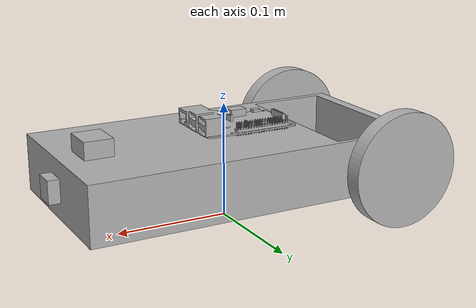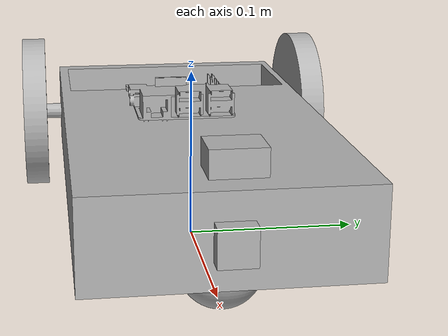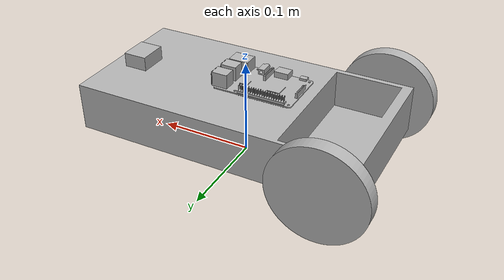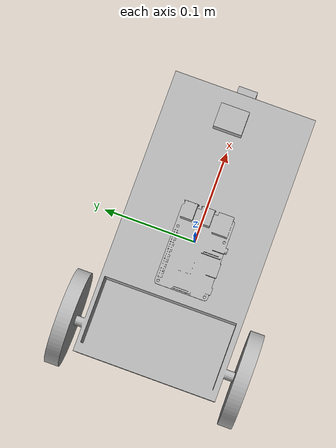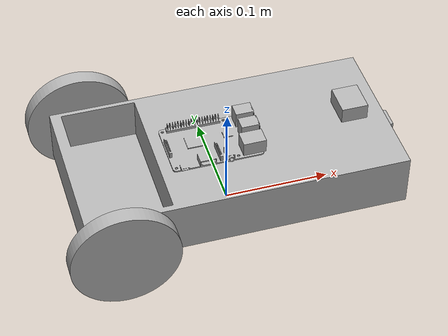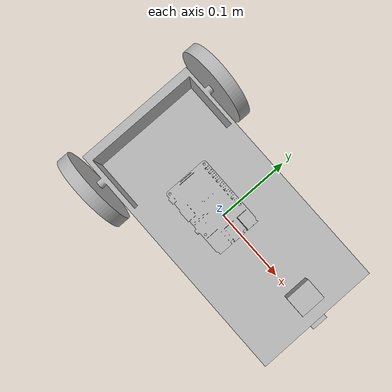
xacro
<?xml version="1.0" ?>
<robot name="beta" xmlns:xacro="http://www.ros.org/wiki/xacro">

<xacro:include filename="$(find beta_description)/urdf/materials.xacro" />
<xacro:include filename="$(find beta_description)/urdf/beta.trans" />
<xacro:include filename="$(find beta_description)/urdf/beta.gazebo" />
<link name="base_link">
  <inertial>
    <origin rpy="0 0 0" xyz="0.021963834758877466 -0.00016670469182376223 0.04894599334218868"/>
    <mass value="1.9711450441063976"/>
    <inertia ixx="0.004232" ixy="-4.2e-05" ixz="-0.000263" iyy="0.012667" iyz="2e-06" izz="0.016042"/>
  </inertial>
  <visual>
    <origin rpy="0 0 0" xyz="0 0 0"/>
    <geometry>
      <mesh filename="package://beta_description/meshes/base_link.stl" scale="0.001 0.001 0.001"/>
    </geometry>
    <material name="silver"/>
  </visual>
  <collision>
    <origin rpy="0 0 0" xyz="0 0 0"/>
    <geometry>
      <mesh filename="package://beta_description/meshes/base_link.stl" scale="0.001 0.001 0.001"/>
    </geometry>
  </collision>
</link>

<link name="left_wheel_1">
  <inertial>
    <origin rpy="0 0 0" xyz="1.3877787807814457e-17 0.007499999999999993 6.938893903907228e-18"/>
    <mass value="0.10956304379394399"/>
    <inertia ixx="7.1e-05" ixy="0.0" ixz="0.0" iyy="0.000137" iyz="0.0" izz="7.1e-05"/>
  </inertial>
  <visual>
    <origin rpy="0 0 0" xyz="0.12 -0.085 -0.05"/>
    <geometry>
      <mesh filename="package://beta_description/meshes/left_wheel_1.stl" scale="0.001 0.001 0.001"/>
    </geometry>
    <material name="silver"/>
  </visual>
  <collision>
    <origin rpy="0 0 0" xyz="0.12 -0.085 -0.05"/>
    <geometry>
      <mesh filename="package://beta_description/meshes/left_wheel_1.stl" scale="0.001 0.001 0.001"/>
    </geometry>
  </collision>
</link>

<link name="right_wheel_1">
  <inertial>
    <origin rpy="0 0 0" xyz="1.3877787807814457e-17 -0.007499999999999993 6.938893903907228e-18"/>
    <mass value="0.10956304379394399"/>
    <inertia ixx="7.1e-05" ixy="0.0" ixz="0.0" iyy="0.000137" iyz="0.0" izz="7.1e-05"/>
  </inertial>
  <visual>
    <origin rpy="0 0 0" xyz="0.12 0.085 -0.05"/>
    <geometry>
      <mesh filename="package://beta_description/meshes/right_wheel_1.stl" scale="0.001 0.001 0.001"/>
    </geometry>
    <material name="silver"/>
  </visual>
  <collision>
    <origin rpy="0 0 0" xyz="0.12 0.085 -0.05"/>
    <geometry>
      <mesh filename="package://beta_description/meshes/right_wheel_1.stl" scale="0.001 0.001 0.001"/>
    </geometry>
  </collision>
</link>

<link name="lidar_link_1">
  <inertial>
    <origin rpy="0 0 0" xyz="-0.03 -0.06999999999999999 0.007500000000000007"/>
    <mass value="1e-5"/>
    <inertia ixx="1e-06" ixy="-0.0" ixz="0.0" iyy="1e-06" iyz="0.0" izz="2e-06"/>
  </inertial>
  <visual>
    <origin rpy="0 0 0" xyz="-0.15 -0.0 -0.09"/>
    <geometry>
      <mesh filename="package://beta_description/meshes/lidar_link_1.stl" scale="0.001 0.001 0.001"/>
    </geometry>
    <material name="silver"/>
  </visual>
  <collision>
    <origin rpy="0 0 0" xyz="-0.15 -0.0 -0.09"/>
    <geometry>
      <mesh filename="package://beta_description/meshes/lidar_link_1.stl" scale="0.001 0.001 0.001"/>
    </geometry>
  </collision>
</link>

<link name="camera">
  <inertial>
    <origin rpy="0 0 0" xyz="0.004999999999999977 0.0 0.0"/>
    <mass value="0.00424"/>
    <inertia ixx="0.0" ixy="0.0" ixz="-0.0" iyy="0.0" iyz="-0.0" izz="0.0"/>
  </inertial>
  <visual>
    <origin rpy="0 0 0" xyz="-0.15 -0.0 -0.05"/>
    <geometry>
      <mesh filename="package://beta_description/meshes/camera_link_1.stl" scale="0.001 0.001 0.001"/>
    </geometry>
    <material name="silver"/>
  </visual>
  <collision>
    <origin rpy="0 0 0" xyz="-0.15 -0.0 -0.05"/>
    <geometry>
      <mesh filename="package://beta_description/meshes/camera_link_1.stl" scale="0.001 0.001 0.001"/>
    </geometry>
  </collision>
</link>

<link name="pi_1">
  <inertial>
    <origin rpy="0 0 0" xyz="-0.00203452748026686 -0.0067540083650862795 0.007888830680915365"/>
    <mass value="0.1347216757914449"/>
    <inertia ixx="4.1e-05" ixy="-0.0" ixz="-9e-06" iyy="8.3e-05" iyz="0.0" izz="0.000118"/>
  </inertial>
  <visual>
    <origin rpy="0 0 0" xyz="-0.0 -0.0 -0.075"/>
    <geometry>
      <mesh filename="package://beta_description/meshes/pi_1.stl" scale="0.001 0.001 0.001"/>
    </geometry>
    <material name="silver"/>
  </visual>
  <collision>
    <origin rpy="0 0 0" xyz="-0.0 -0.0 -0.075"/>
    <geometry>
      <mesh filename="package://beta_description/meshes/pi_1.stl" scale="0.001 0.001 0.001"/>
    </geometry>
  </collision>
</link>

<link name="caster_wheel_1">
  <inertial>
    <origin rpy="0 0 0" xyz="0.11 -0.075 -0.009553571428571432"/>
    <mass value="0.21848549721086696"/>
    <inertia ixx="3.1e-05" ixy="-0.0" ixz="0.0" iyy="3.1e-05" iyz="-0.0" izz="4.6e-05"/>
  </inertial>
  <visual>
    <origin rpy="0 0 0" xyz="-0.0 -0.075 -0.025"/>
    <geometry>
      <mesh filename="package://beta_description/meshes/caster_wheel_1.stl" scale="0.001 0.001 0.001"/>
    </geometry>
    <material name="silver"/>
  </visual>
  <collision>
    <origin rpy="0 0 0" xyz="-0.0 -0.075 -0.025"/>
    <geometry>
      <mesh filename="package://beta_description/meshes/caster_wheel_1.stl" scale="0.001 0.001 0.001"/>
    </geometry>
  </collision>
</link>

<joint name="left_wheel_joint" type="continuous">
  <origin rpy="0 0 0" xyz="-0.12 0.085 0.05"/>
  <parent link="base_link"/>
  <child link="left_wheel_1"/>
  <axis xyz="0.0 1.0 0.0"/>
</joint>

<joint name="right_whell_joint" type="continuous">
  <origin rpy="0 0 0" xyz="-0.12 -0.085 0.05"/>
  <parent link="base_link"/>
  <child link="right_wheel_1"/>
  <axis xyz="0.0 1.0 0.0"/>
</joint>

<joint name="lidar_joint" type="fixed">
  <origin rpy="0 0 0" xyz="0.15 0 0.09"/>
  <parent link="base_link"/>
  <child link="lidar_link_1"/>
</joint>

<joint name="camera_joint" type="fixed">
  <origin rpy="0 0 0" xyz="0.15 0.0 0.05"/>
  <parent link="base_link"/>
  <child link="camera"/>
</joint>

<joint name="pi_joint" type="fixed">
  <origin rpy="0 0 0" xyz="0.0 0.0 0.075"/>
  <parent link="base_link"/>
  <child link="pi_1"/>
</joint>

<joint name="caster_joint" type="fixed">
  <origin rpy="0 0 0" xyz="0.0 0.075 0.025"/>
  <parent link="base_link"/>
  <child link="caster_wheel_1"/>
</joint>

</robot>

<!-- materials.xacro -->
<robot name="beta" xmlns:xacro="http://www.ros.org/wiki/xacro" >

<material name="silver">
  <color rgba="0.700 0.700 0.700 1.000"/>
</material>

</robot>

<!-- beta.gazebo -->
<robot name="beta" xmlns:xacro="http://www.ros.org/wiki/xacro" >

<xacro:property name="body_color" value="Gazebo/Turquoise" />
<xacro:property name="wheel_color" value="Gazebo/Black" />
<xacro:property name="caster_color" value="Gazebo/Blue" />
<xacro:property name="pi_color" value="Gazebo/Green" />
<xacro:property name="camera_color" value="Gazebo/Red" />
<xacro:property name="lidar_color" value="Gazebo/Black" />

<gazebo>
  <plugin filename="libgazebo_ros_control.so" name="control"/>
</gazebo>
<gazebo reference="base_link">
  <material>${body_color}</material>
  <mu1>0.2</mu1>
  <mu2>0.2</mu2>
  <selfCollide>true</selfCollide>
  <gravity>true</gravity>
</gazebo>

<gazebo reference="left_wheel_1">
  <material>${wheel_color}</material>
  <mu1>1000</mu1>
  <mu2>1000</mu2>
  <selfCollide>true</selfCollide>
</gazebo>

<gazebo reference="right_wheel_1">
  <material>${wheel_color}</material>
  <mu1>1000</mu1>
  <mu2>1000</mu2>
  <selfCollide>true</selfCollide>
</gazebo>

<gazebo reference="lidar_link_1">
  <material>${lidar_color}</material>
  <mu1>0.2</mu1>
  <mu2>0.2</mu2>
  <selfCollide>true</selfCollide>
</gazebo>

<gazebo reference="camera_link_1">
  <material>${camera_color}</material>
  <mu1>0.2</mu1>
  <mu2>0.2</mu2>
  <selfCollide>true</selfCollide>
</gazebo>

<gazebo reference="pi_1">
  <material>${pi_color}</material>
  <mu1>0.2</mu1>
  <mu2>0.2</mu2>
  <selfCollide>true</selfCollide>
</gazebo>

<gazebo reference="caster_wheel_1">
  <material>${caster_color}</material>
  <mu1>0.01</mu1>
  <mu2>0.01</mu2>
  <selfCollide>true</selfCollide>
</gazebo>

<gazebo>
  <plugin name="differential_drive_controller" filename="libgazebo_ros_diff_drive.so">

    <!-- Plugin update rate in Hz -->
    <updateRate>10</updateRate>

    <!-- Name of left joint, defaults to `left_joint` -->
    <leftJoint>left_wheel_joint</leftJoint>

    <!-- Name of right joint, defaults to `right_joint` -->
    <rightJoint>right_whell_joint</rightJoint>

    <!-- The distance from the center of one wheel to the other, in meters, defaults to 0.34 m -->
    <wheelSeparation>0.17</wheelSeparation>

    <!-- Diameter of the wheels, in meters, defaults to 0.15 m -->
    <wheelDiameter>0.1</wheelDiameter>

    <!-- Wheel acceleration, in rad/s^2, defaults to 0.0 rad/s^2 -->
    <wheelAcceleration>1.0</wheelAcceleration>

    <!-- Maximum torque which the wheels can produce, in Nm, defaults to 5 Nm -->
    <wheelTorque>50</wheelTorque>

    <!-- Topic to receive geometry_msgs/Twist message commands, defaults to `cmd_vel` -->
    <commandTopic>cmd_vel</commandTopic>

    <!-- Topic to publish nav_msgs/Odometry messages, defaults to `odom` -->
    <odometryTopic>odom</odometryTopic>

    <!-- Odometry frame, defaults to `odom` -->
    <odometryFrame>odom</odometryFrame>

    <!-- Robot frame to calculate odometry from, defaults to `base_footprint` -->
    <robotBaseFrame>base_link</robotBaseFrame>

    <!-- Odometry source, 0 for ENCODER, 1 for WORLD, defaults to WORLD -->
    <odometrySource>1</odometrySource>

    <!-- Set to true to publish transforms for the wheel links, defaults to false -->
    <publishWheelTF>true</publishWheelTF>

    <!-- Set to true to publish transforms for the odometry, defaults to true -->
    <publishOdom>true</publishOdom>

    <!-- Set to true to publish sensor_msgs/JointState on /joint_states for the wheel joints, defaults to false -->
    <publishWheelJointState>true</publishWheelJointState>

    <!-- Set to true to swap right and left wheels, defaults to true -->
    <legacyMode>false</legacyMode>
  </plugin>
</gazebo>

  <!-- camera -->
  <gazebo reference="camera">
    <sensor type="camera" name="camera1">
      <update_rate>30.0</update_rate>
      <camera name="head">
        <horizontal_fov>1.3962634</horizontal_fov>
        <image>
          <width>800</width>
          <height>800</height>
          <format>R8G8B8</format>
        </image>
        <clip>
          <near>0.02</near>
          <far>300</far>
        </clip>
      </camera>
      <plugin name="camera_controller" filename="libgazebo_ros_camera.so">
        <robotNamespace></robotNamespace>
        <alwaysOn>true</alwaysOn>
        <updateRate>30.0</updateRate>
        <cameraName>camera</cameraName>
        <imageTopicName>rgb/image_raw</imageTopicName>
        <cameraInfoTopicName>rgb/camera_info</cameraInfoTopicName>
        <frameName>camera</frameName>
        <hackBaseline>0.07</hackBaseline>
        <distortionK1>0.0</distortionK1>
        <distortionK2>0.0</distortionK2>
        <distortionK3>0.0</distortionK3>
        <distortionT1>0.0</distortionT1>
        <distortionT2>0.0</distortionT2>
      </plugin>
    </sensor>
  </gazebo>

  <!-- hokuyo -->
  <gazebo reference="lidar_link_1">
    <sensor type="ray" name="head_hokuyo_sensor">
      <pose>0 0 0 0 0 0</pose>
      <visualize>true</visualize>
      <update_rate>40</update_rate>
      <ray>
        <scan>
          <horizontal>
            <samples>720</samples>
            <resolution>1</resolution>
            <min_angle>-1.570796</min_angle>
            <max_angle>1.570796</max_angle>
          </horizontal>
        </scan>
        <range>
          <min>0.10</min>
          <max>5.0</max>
          <resolution>0.01</resolution>
        </range>
        <noise>
          <type>gaussian</type>
          <mean>0.0</mean>
          <stddev>0.01</stddev>
        </noise>
      </ray>
      <plugin name="gazebo_ros_head_hokuyo_controller" filename="libgazebo_ros_laser.so">
        <topicName>/scan</topicName>
        <frameName>lidar_link_1</frameName>
      </plugin>
    </sensor>
  </gazebo>

</robot>
